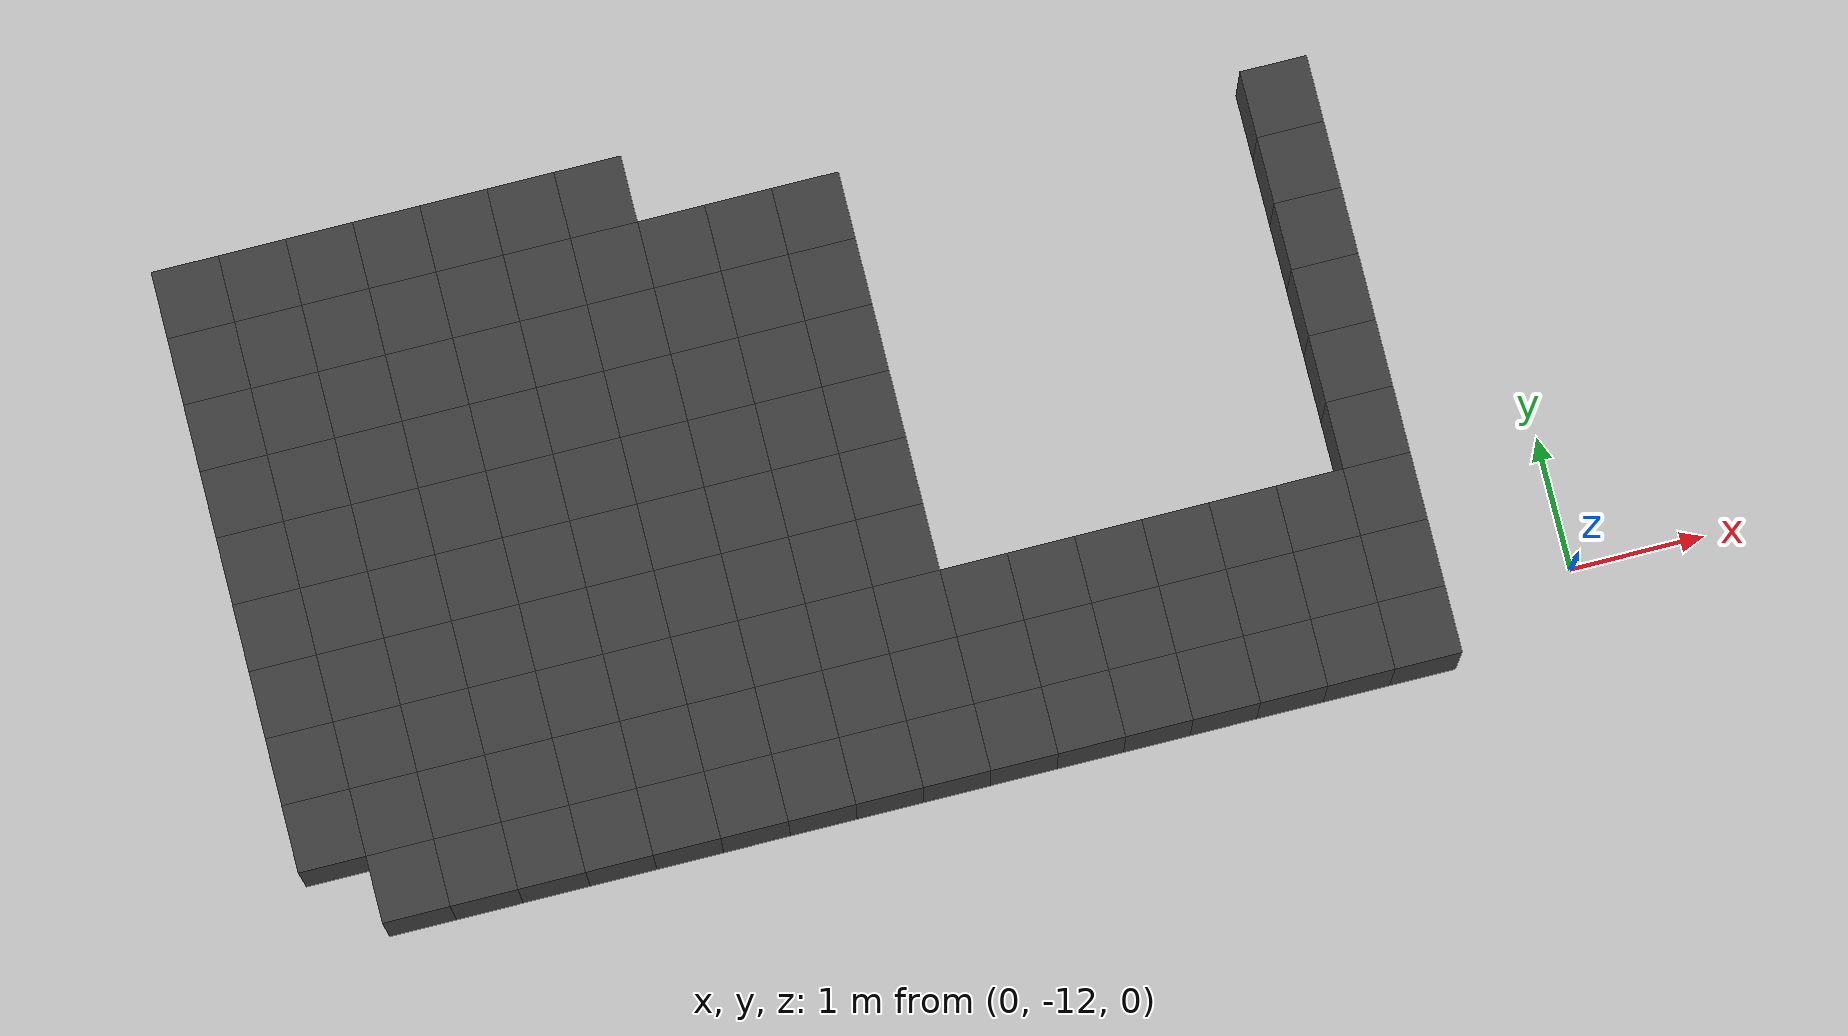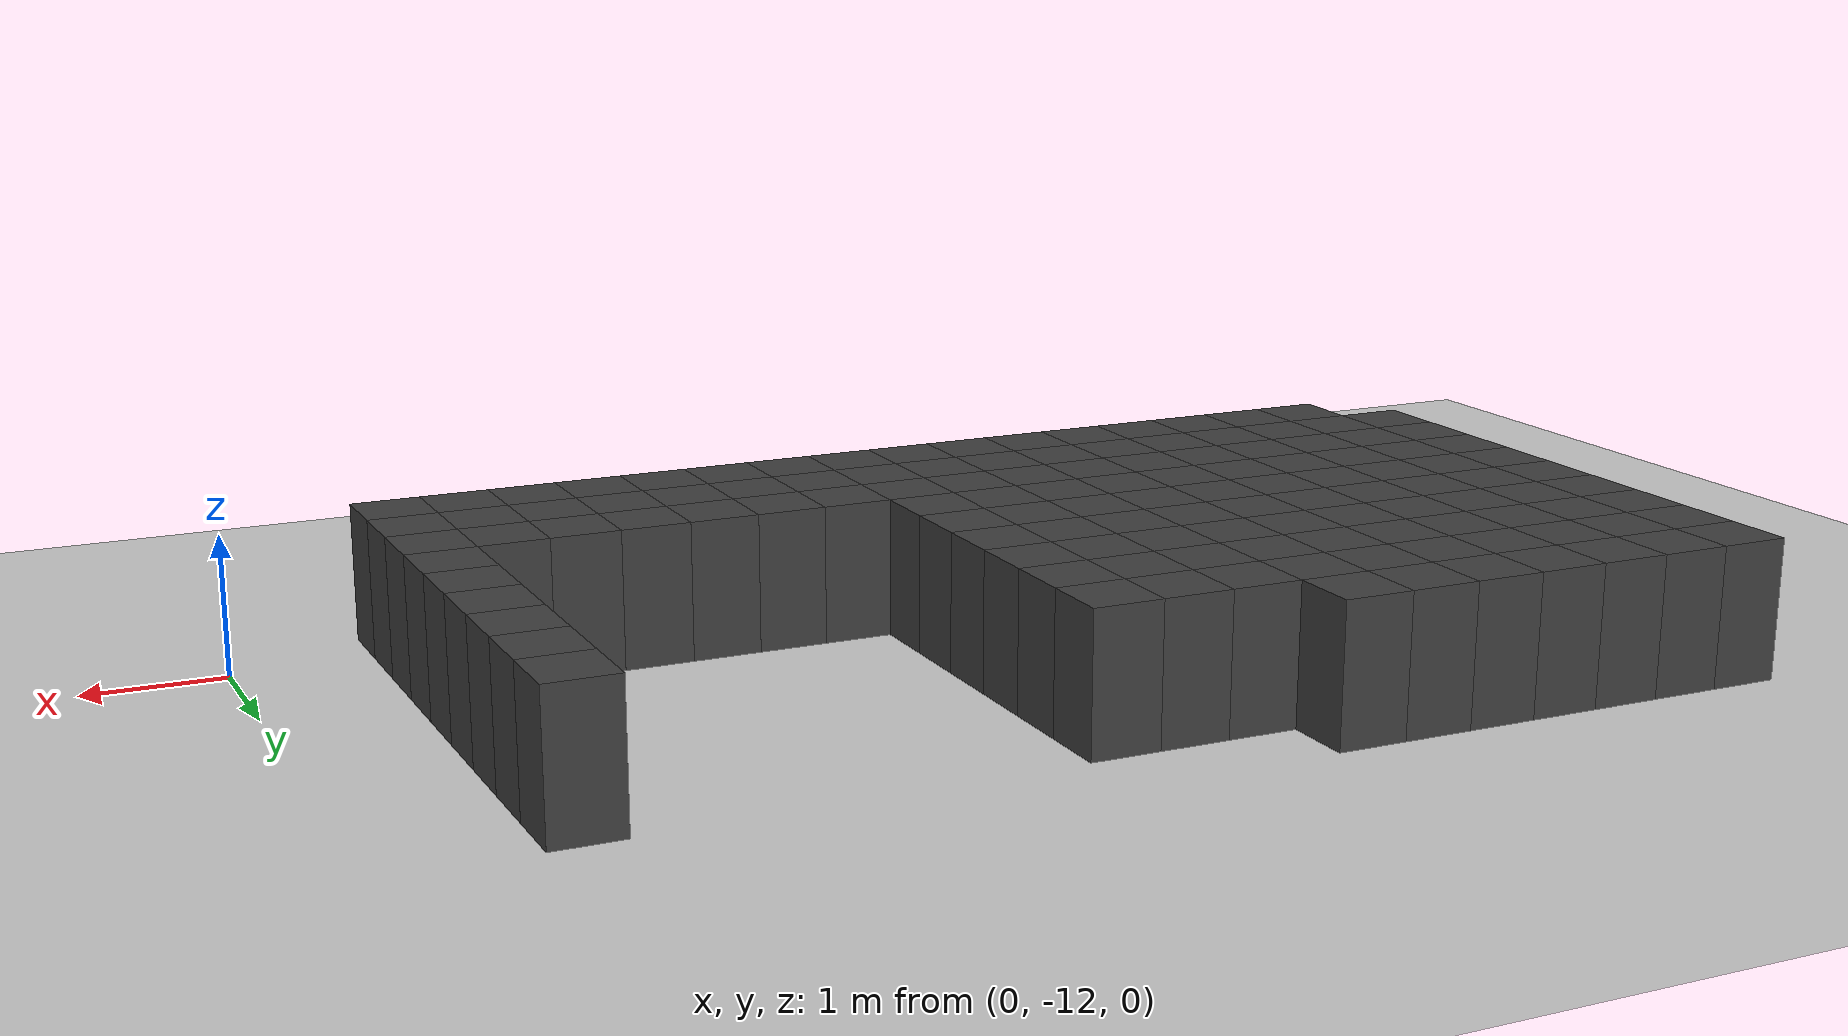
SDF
<sdf version="1.7">
 <world name="map_13364">
  <model name="ground_plane">
   <static>true</static>
   <link name="link">
    <collision name="collision">
     <geometry><plane><normal>0 0 1</normal><size>200 200</size></plane></geometry>
    </collision>
    <visual name="visual">
     <geometry><plane><normal>0 0 1</normal><size>200 200</size></plane></geometry>
     <material><ambient>0.8 0.8 0.8 1</ambient><diffuse>0.8 0.8 0.8 1</diffuse></material>
    </visual>
   </link>
  </model>
  <model name="maze_environment">
   <static>true</static>
   <link name="wall_1448">
    <pose>-9.250 -7.750 0.500 0 0 0</pose>
    <collision name="col"><geometry><box><size>0.5 0.5 1.0</size></box></geometry></collision>
    <visual name="vis">
     <geometry><box><size>0.5 0.5 1.0</size></box></geometry>
     <material><ambient>0.15 0.15 0.15 1</ambient><diffuse>0.25 0.25 0.25 1</diffuse></material>
    </visual>
   </link>
   <link name="wall_1449">
    <pose>-8.750 -7.750 0.500 0 0 0</pose>
    <collision name="col"><geometry><box><size>0.5 0.5 1.0</size></box></geometry></collision>
    <visual name="vis">
     <geometry><box><size>0.5 0.5 1.0</size></box></geometry>
     <material><ambient>0.15 0.15 0.15 1</ambient><diffuse>0.25 0.25 0.25 1</diffuse></material>
    </visual>
   </link>
   <link name="wall_1450">
    <pose>-8.250 -7.750 0.500 0 0 0</pose>
    <collision name="col"><geometry><box><size>0.5 0.5 1.0</size></box></geometry></collision>
    <visual name="vis">
     <geometry><box><size>0.5 0.5 1.0</size></box></geometry>
     <material><ambient>0.15 0.15 0.15 1</ambient><diffuse>0.25 0.25 0.25 1</diffuse></material>
    </visual>
   </link>
   <link name="wall_1451">
    <pose>-7.750 -7.750 0.500 0 0 0</pose>
    <collision name="col"><geometry><box><size>0.5 0.5 1.0</size></box></geometry></collision>
    <visual name="vis">
     <geometry><box><size>0.5 0.5 1.0</size></box></geometry>
     <material><ambient>0.15 0.15 0.15 1</ambient><diffuse>0.25 0.25 0.25 1</diffuse></material>
    </visual>
   </link>
   <link name="wall_1452">
    <pose>-7.250 -7.750 0.500 0 0 0</pose>
    <collision name="col"><geometry><box><size>0.5 0.5 1.0</size></box></geometry></collision>
    <visual name="vis">
     <geometry><box><size>0.5 0.5 1.0</size></box></geometry>
     <material><ambient>0.15 0.15 0.15 1</ambient><diffuse>0.25 0.25 0.25 1</diffuse></material>
    </visual>
   </link>
   <link name="wall_1453">
    <pose>-6.750 -7.750 0.500 0 0 0</pose>
    <collision name="col"><geometry><box><size>0.5 0.5 1.0</size></box></geometry></collision>
    <visual name="vis">
     <geometry><box><size>0.5 0.5 1.0</size></box></geometry>
     <material><ambient>0.15 0.15 0.15 1</ambient><diffuse>0.25 0.25 0.25 1</diffuse></material>
    </visual>
   </link>
   <link name="wall_1454">
    <pose>-6.250 -7.750 0.500 0 0 0</pose>
    <collision name="col"><geometry><box><size>0.5 0.5 1.0</size></box></geometry></collision>
    <visual name="vis">
     <geometry><box><size>0.5 0.5 1.0</size></box></geometry>
     <material><ambient>0.15 0.15 0.15 1</ambient><diffuse>0.25 0.25 0.25 1</diffuse></material>
    </visual>
   </link>
   <link name="wall_1485">
    <pose>-9.250 -8.250 0.500 0 0 0</pose>
    <collision name="col"><geometry><box><size>0.5 0.5 1.0</size></box></geometry></collision>
    <visual name="vis">
     <geometry><box><size>0.5 0.5 1.0</size></box></geometry>
     <material><ambient>0.15 0.15 0.15 1</ambient><diffuse>0.25 0.25 0.25 1</diffuse></material>
    </visual>
   </link>
   <link name="wall_1486">
    <pose>-8.750 -8.250 0.500 0 0 0</pose>
    <collision name="col"><geometry><box><size>0.5 0.5 1.0</size></box></geometry></collision>
    <visual name="vis">
     <geometry><box><size>0.5 0.5 1.0</size></box></geometry>
     <material><ambient>0.15 0.15 0.15 1</ambient><diffuse>0.25 0.25 0.25 1</diffuse></material>
    </visual>
   </link>
   <link name="wall_1487">
    <pose>-8.250 -8.250 0.500 0 0 0</pose>
    <collision name="col"><geometry><box><size>0.5 0.5 1.0</size></box></geometry></collision>
    <visual name="vis">
     <geometry><box><size>0.5 0.5 1.0</size></box></geometry>
     <material><ambient>0.15 0.15 0.15 1</ambient><diffuse>0.25 0.25 0.25 1</diffuse></material>
    </visual>
   </link>
   <link name="wall_1488">
    <pose>-7.750 -8.250 0.500 0 0 0</pose>
    <collision name="col"><geometry><box><size>0.5 0.5 1.0</size></box></geometry></collision>
    <visual name="vis">
     <geometry><box><size>0.5 0.5 1.0</size></box></geometry>
     <material><ambient>0.15 0.15 0.15 1</ambient><diffuse>0.25 0.25 0.25 1</diffuse></material>
    </visual>
   </link>
   <link name="wall_1489">
    <pose>-7.250 -8.250 0.500 0 0 0</pose>
    <collision name="col"><geometry><box><size>0.5 0.5 1.0</size></box></geometry></collision>
    <visual name="vis">
     <geometry><box><size>0.5 0.5 1.0</size></box></geometry>
     <material><ambient>0.15 0.15 0.15 1</ambient><diffuse>0.25 0.25 0.25 1</diffuse></material>
    </visual>
   </link>
   <link name="wall_1490">
    <pose>-6.750 -8.250 0.500 0 0 0</pose>
    <collision name="col"><geometry><box><size>0.5 0.5 1.0</size></box></geometry></collision>
    <visual name="vis">
     <geometry><box><size>0.5 0.5 1.0</size></box></geometry>
     <material><ambient>0.15 0.15 0.15 1</ambient><diffuse>0.25 0.25 0.25 1</diffuse></material>
    </visual>
   </link>
   <link name="wall_1491">
    <pose>-6.250 -8.250 0.500 0 0 0</pose>
    <collision name="col"><geometry><box><size>0.5 0.5 1.0</size></box></geometry></collision>
    <visual name="vis">
     <geometry><box><size>0.5 0.5 1.0</size></box></geometry>
     <material><ambient>0.15 0.15 0.15 1</ambient><diffuse>0.25 0.25 0.25 1</diffuse></material>
    </visual>
   </link>
   <link name="wall_1492">
    <pose>-5.750 -8.250 0.500 0 0 0</pose>
    <collision name="col"><geometry><box><size>0.5 0.5 1.0</size></box></geometry></collision>
    <visual name="vis">
     <geometry><box><size>0.5 0.5 1.0</size></box></geometry>
     <material><ambient>0.15 0.15 0.15 1</ambient><diffuse>0.25 0.25 0.25 1</diffuse></material>
    </visual>
   </link>
   <link name="wall_1493">
    <pose>-5.250 -8.250 0.500 0 0 0</pose>
    <collision name="col"><geometry><box><size>0.5 0.5 1.0</size></box></geometry></collision>
    <visual name="vis">
     <geometry><box><size>0.5 0.5 1.0</size></box></geometry>
     <material><ambient>0.15 0.15 0.15 1</ambient><diffuse>0.25 0.25 0.25 1</diffuse></material>
    </visual>
   </link>
   <link name="wall_1494">
    <pose>-4.750 -8.250 0.500 0 0 0</pose>
    <collision name="col"><geometry><box><size>0.5 0.5 1.0</size></box></geometry></collision>
    <visual name="vis">
     <geometry><box><size>0.5 0.5 1.0</size></box></geometry>
     <material><ambient>0.15 0.15 0.15 1</ambient><diffuse>0.25 0.25 0.25 1</diffuse></material>
    </visual>
   </link>
   <link name="wall_1495">
    <pose>-1.250 -8.250 0.500 0 0 0</pose>
    <collision name="col"><geometry><box><size>0.5 0.5 1.0</size></box></geometry></collision>
    <visual name="vis">
     <geometry><box><size>0.5 0.5 1.0</size></box></geometry>
     <material><ambient>0.15 0.15 0.15 1</ambient><diffuse>0.25 0.25 0.25 1</diffuse></material>
    </visual>
   </link>
   <link name="wall_1522">
    <pose>-9.250 -8.750 0.500 0 0 0</pose>
    <collision name="col"><geometry><box><size>0.5 0.5 1.0</size></box></geometry></collision>
    <visual name="vis">
     <geometry><box><size>0.5 0.5 1.0</size></box></geometry>
     <material><ambient>0.15 0.15 0.15 1</ambient><diffuse>0.25 0.25 0.25 1</diffuse></material>
    </visual>
   </link>
   <link name="wall_1523">
    <pose>-8.750 -8.750 0.500 0 0 0</pose>
    <collision name="col"><geometry><box><size>0.5 0.5 1.0</size></box></geometry></collision>
    <visual name="vis">
     <geometry><box><size>0.5 0.5 1.0</size></box></geometry>
     <material><ambient>0.15 0.15 0.15 1</ambient><diffuse>0.25 0.25 0.25 1</diffuse></material>
    </visual>
   </link>
   <link name="wall_1524">
    <pose>-8.250 -8.750 0.500 0 0 0</pose>
    <collision name="col"><geometry><box><size>0.5 0.5 1.0</size></box></geometry></collision>
    <visual name="vis">
     <geometry><box><size>0.5 0.5 1.0</size></box></geometry>
     <material><ambient>0.15 0.15 0.15 1</ambient><diffuse>0.25 0.25 0.25 1</diffuse></material>
    </visual>
   </link>
   <link name="wall_1525">
    <pose>-7.750 -8.750 0.500 0 0 0</pose>
    <collision name="col"><geometry><box><size>0.5 0.5 1.0</size></box></geometry></collision>
    <visual name="vis">
     <geometry><box><size>0.5 0.5 1.0</size></box></geometry>
     <material><ambient>0.15 0.15 0.15 1</ambient><diffuse>0.25 0.25 0.25 1</diffuse></material>
    </visual>
   </link>
   <link name="wall_1526">
    <pose>-7.250 -8.750 0.500 0 0 0</pose>
    <collision name="col"><geometry><box><size>0.5 0.5 1.0</size></box></geometry></collision>
    <visual name="vis">
     <geometry><box><size>0.5 0.5 1.0</size></box></geometry>
     <material><ambient>0.15 0.15 0.15 1</ambient><diffuse>0.25 0.25 0.25 1</diffuse></material>
    </visual>
   </link>
   <link name="wall_1527">
    <pose>-6.750 -8.750 0.500 0 0 0</pose>
    <collision name="col"><geometry><box><size>0.5 0.5 1.0</size></box></geometry></collision>
    <visual name="vis">
     <geometry><box><size>0.5 0.5 1.0</size></box></geometry>
     <material><ambient>0.15 0.15 0.15 1</ambient><diffuse>0.25 0.25 0.25 1</diffuse></material>
    </visual>
   </link>
   <link name="wall_1528">
    <pose>-6.250 -8.750 0.500 0 0 0</pose>
    <collision name="col"><geometry><box><size>0.5 0.5 1.0</size></box></geometry></collision>
    <visual name="vis">
     <geometry><box><size>0.5 0.5 1.0</size></box></geometry>
     <material><ambient>0.15 0.15 0.15 1</ambient><diffuse>0.25 0.25 0.25 1</diffuse></material>
    </visual>
   </link>
   <link name="wall_1529">
    <pose>-5.750 -8.750 0.500 0 0 0</pose>
    <collision name="col"><geometry><box><size>0.5 0.5 1.0</size></box></geometry></collision>
    <visual name="vis">
     <geometry><box><size>0.5 0.5 1.0</size></box></geometry>
     <material><ambient>0.15 0.15 0.15 1</ambient><diffuse>0.25 0.25 0.25 1</diffuse></material>
    </visual>
   </link>
   <link name="wall_1530">
    <pose>-5.250 -8.750 0.500 0 0 0</pose>
    <collision name="col"><geometry><box><size>0.5 0.5 1.0</size></box></geometry></collision>
    <visual name="vis">
     <geometry><box><size>0.5 0.5 1.0</size></box></geometry>
     <material><ambient>0.15 0.15 0.15 1</ambient><diffuse>0.25 0.25 0.25 1</diffuse></material>
    </visual>
   </link>
   <link name="wall_1531">
    <pose>-4.750 -8.750 0.500 0 0 0</pose>
    <collision name="col"><geometry><box><size>0.5 0.5 1.0</size></box></geometry></collision>
    <visual name="vis">
     <geometry><box><size>0.5 0.5 1.0</size></box></geometry>
     <material><ambient>0.15 0.15 0.15 1</ambient><diffuse>0.25 0.25 0.25 1</diffuse></material>
    </visual>
   </link>
   <link name="wall_1532">
    <pose>-1.250 -8.750 0.500 0 0 0</pose>
    <collision name="col"><geometry><box><size>0.5 0.5 1.0</size></box></geometry></collision>
    <visual name="vis">
     <geometry><box><size>0.5 0.5 1.0</size></box></geometry>
     <material><ambient>0.15 0.15 0.15 1</ambient><diffuse>0.25 0.25 0.25 1</diffuse></material>
    </visual>
   </link>
   <link name="wall_1559">
    <pose>-9.250 -9.250 0.500 0 0 0</pose>
    <collision name="col"><geometry><box><size>0.5 0.5 1.0</size></box></geometry></collision>
    <visual name="vis">
     <geometry><box><size>0.5 0.5 1.0</size></box></geometry>
     <material><ambient>0.15 0.15 0.15 1</ambient><diffuse>0.25 0.25 0.25 1</diffuse></material>
    </visual>
   </link>
   <link name="wall_1560">
    <pose>-8.750 -9.250 0.500 0 0 0</pose>
    <collision name="col"><geometry><box><size>0.5 0.5 1.0</size></box></geometry></collision>
    <visual name="vis">
     <geometry><box><size>0.5 0.5 1.0</size></box></geometry>
     <material><ambient>0.15 0.15 0.15 1</ambient><diffuse>0.25 0.25 0.25 1</diffuse></material>
    </visual>
   </link>
   <link name="wall_1561">
    <pose>-8.250 -9.250 0.500 0 0 0</pose>
    <collision name="col"><geometry><box><size>0.5 0.5 1.0</size></box></geometry></collision>
    <visual name="vis">
     <geometry><box><size>0.5 0.5 1.0</size></box></geometry>
     <material><ambient>0.15 0.15 0.15 1</ambient><diffuse>0.25 0.25 0.25 1</diffuse></material>
    </visual>
   </link>
   <link name="wall_1562">
    <pose>-7.750 -9.250 0.500 0 0 0</pose>
    <collision name="col"><geometry><box><size>0.5 0.5 1.0</size></box></geometry></collision>
    <visual name="vis">
     <geometry><box><size>0.5 0.5 1.0</size></box></geometry>
     <material><ambient>0.15 0.15 0.15 1</ambient><diffuse>0.25 0.25 0.25 1</diffuse></material>
    </visual>
   </link>
   <link name="wall_1563">
    <pose>-7.250 -9.250 0.500 0 0 0</pose>
    <collision name="col"><geometry><box><size>0.5 0.5 1.0</size></box></geometry></collision>
    <visual name="vis">
     <geometry><box><size>0.5 0.5 1.0</size></box></geometry>
     <material><ambient>0.15 0.15 0.15 1</ambient><diffuse>0.25 0.25 0.25 1</diffuse></material>
    </visual>
   </link>
   <link name="wall_1564">
    <pose>-6.750 -9.250 0.500 0 0 0</pose>
    <collision name="col"><geometry><box><size>0.5 0.5 1.0</size></box></geometry></collision>
    <visual name="vis">
     <geometry><box><size>0.5 0.5 1.0</size></box></geometry>
     <material><ambient>0.15 0.15 0.15 1</ambient><diffuse>0.25 0.25 0.25 1</diffuse></material>
    </visual>
   </link>
   <link name="wall_1565">
    <pose>-6.250 -9.250 0.500 0 0 0</pose>
    <collision name="col"><geometry><box><size>0.5 0.5 1.0</size></box></geometry></collision>
    <visual name="vis">
     <geometry><box><size>0.5 0.5 1.0</size></box></geometry>
     <material><ambient>0.15 0.15 0.15 1</ambient><diffuse>0.25 0.25 0.25 1</diffuse></material>
    </visual>
   </link>
   <link name="wall_1566">
    <pose>-5.750 -9.250 0.500 0 0 0</pose>
    <collision name="col"><geometry><box><size>0.5 0.5 1.0</size></box></geometry></collision>
    <visual name="vis">
     <geometry><box><size>0.5 0.5 1.0</size></box></geometry>
     <material><ambient>0.15 0.15 0.15 1</ambient><diffuse>0.25 0.25 0.25 1</diffuse></material>
    </visual>
   </link>
   <link name="wall_1567">
    <pose>-5.250 -9.250 0.500 0 0 0</pose>
    <collision name="col"><geometry><box><size>0.5 0.5 1.0</size></box></geometry></collision>
    <visual name="vis">
     <geometry><box><size>0.5 0.5 1.0</size></box></geometry>
     <material><ambient>0.15 0.15 0.15 1</ambient><diffuse>0.25 0.25 0.25 1</diffuse></material>
    </visual>
   </link>
   <link name="wall_1568">
    <pose>-4.750 -9.250 0.500 0 0 0</pose>
    <collision name="col"><geometry><box><size>0.5 0.5 1.0</size></box></geometry></collision>
    <visual name="vis">
     <geometry><box><size>0.5 0.5 1.0</size></box></geometry>
     <material><ambient>0.15 0.15 0.15 1</ambient><diffuse>0.25 0.25 0.25 1</diffuse></material>
    </visual>
   </link>
   <link name="wall_1569">
    <pose>-1.250 -9.250 0.500 0 0 0</pose>
    <collision name="col"><geometry><box><size>0.5 0.5 1.0</size></box></geometry></collision>
    <visual name="vis">
     <geometry><box><size>0.5 0.5 1.0</size></box></geometry>
     <material><ambient>0.15 0.15 0.15 1</ambient><diffuse>0.25 0.25 0.25 1</diffuse></material>
    </visual>
   </link>
   <link name="wall_1602">
    <pose>-9.250 -9.750 0.500 0 0 0</pose>
    <collision name="col"><geometry><box><size>0.5 0.5 1.0</size></box></geometry></collision>
    <visual name="vis">
     <geometry><box><size>0.5 0.5 1.0</size></box></geometry>
     <material><ambient>0.15 0.15 0.15 1</ambient><diffuse>0.25 0.25 0.25 1</diffuse></material>
    </visual>
   </link>
   <link name="wall_1603">
    <pose>-8.750 -9.750 0.500 0 0 0</pose>
    <collision name="col"><geometry><box><size>0.5 0.5 1.0</size></box></geometry></collision>
    <visual name="vis">
     <geometry><box><size>0.5 0.5 1.0</size></box></geometry>
     <material><ambient>0.15 0.15 0.15 1</ambient><diffuse>0.25 0.25 0.25 1</diffuse></material>
    </visual>
   </link>
   <link name="wall_1604">
    <pose>-8.250 -9.750 0.500 0 0 0</pose>
    <collision name="col"><geometry><box><size>0.5 0.5 1.0</size></box></geometry></collision>
    <visual name="vis">
     <geometry><box><size>0.5 0.5 1.0</size></box></geometry>
     <material><ambient>0.15 0.15 0.15 1</ambient><diffuse>0.25 0.25 0.25 1</diffuse></material>
    </visual>
   </link>
   <link name="wall_1605">
    <pose>-7.750 -9.750 0.500 0 0 0</pose>
    <collision name="col"><geometry><box><size>0.5 0.5 1.0</size></box></geometry></collision>
    <visual name="vis">
     <geometry><box><size>0.5 0.5 1.0</size></box></geometry>
     <material><ambient>0.15 0.15 0.15 1</ambient><diffuse>0.25 0.25 0.25 1</diffuse></material>
    </visual>
   </link>
   <link name="wall_1606">
    <pose>-7.250 -9.750 0.500 0 0 0</pose>
    <collision name="col"><geometry><box><size>0.5 0.5 1.0</size></box></geometry></collision>
    <visual name="vis">
     <geometry><box><size>0.5 0.5 1.0</size></box></geometry>
     <material><ambient>0.15 0.15 0.15 1</ambient><diffuse>0.25 0.25 0.25 1</diffuse></material>
    </visual>
   </link>
   <link name="wall_1607">
    <pose>-6.750 -9.750 0.500 0 0 0</pose>
    <collision name="col"><geometry><box><size>0.5 0.5 1.0</size></box></geometry></collision>
    <visual name="vis">
     <geometry><box><size>0.5 0.5 1.0</size></box></geometry>
     <material><ambient>0.15 0.15 0.15 1</ambient><diffuse>0.25 0.25 0.25 1</diffuse></material>
    </visual>
   </link>
   <link name="wall_1608">
    <pose>-6.250 -9.750 0.500 0 0 0</pose>
    <collision name="col"><geometry><box><size>0.5 0.5 1.0</size></box></geometry></collision>
    <visual name="vis">
     <geometry><box><size>0.5 0.5 1.0</size></box></geometry>
     <material><ambient>0.15 0.15 0.15 1</ambient><diffuse>0.25 0.25 0.25 1</diffuse></material>
    </visual>
   </link>
   <link name="wall_1609">
    <pose>-5.750 -9.750 0.500 0 0 0</pose>
    <collision name="col"><geometry><box><size>0.5 0.5 1.0</size></box></geometry></collision>
    <visual name="vis">
     <geometry><box><size>0.5 0.5 1.0</size></box></geometry>
     <material><ambient>0.15 0.15 0.15 1</ambient><diffuse>0.25 0.25 0.25 1</diffuse></material>
    </visual>
   </link>
   <link name="wall_1610">
    <pose>-5.250 -9.750 0.500 0 0 0</pose>
    <collision name="col"><geometry><box><size>0.5 0.5 1.0</size></box></geometry></collision>
    <visual name="vis">
     <geometry><box><size>0.5 0.5 1.0</size></box></geometry>
     <material><ambient>0.15 0.15 0.15 1</ambient><diffuse>0.25 0.25 0.25 1</diffuse></material>
    </visual>
   </link>
   <link name="wall_1611">
    <pose>-4.750 -9.750 0.500 0 0 0</pose>
    <collision name="col"><geometry><box><size>0.5 0.5 1.0</size></box></geometry></collision>
    <visual name="vis">
     <geometry><box><size>0.5 0.5 1.0</size></box></geometry>
     <material><ambient>0.15 0.15 0.15 1</ambient><diffuse>0.25 0.25 0.25 1</diffuse></material>
    </visual>
   </link>
   <link name="wall_1612">
    <pose>-1.250 -9.750 0.500 0 0 0</pose>
    <collision name="col"><geometry><box><size>0.5 0.5 1.0</size></box></geometry></collision>
    <visual name="vis">
     <geometry><box><size>0.5 0.5 1.0</size></box></geometry>
     <material><ambient>0.15 0.15 0.15 1</ambient><diffuse>0.25 0.25 0.25 1</diffuse></material>
    </visual>
   </link>
   <link name="wall_1645">
    <pose>-9.250 -10.250 0.500 0 0 0</pose>
    <collision name="col"><geometry><box><size>0.5 0.5 1.0</size></box></geometry></collision>
    <visual name="vis">
     <geometry><box><size>0.5 0.5 1.0</size></box></geometry>
     <material><ambient>0.15 0.15 0.15 1</ambient><diffuse>0.25 0.25 0.25 1</diffuse></material>
    </visual>
   </link>
   <link name="wall_1646">
    <pose>-8.750 -10.250 0.500 0 0 0</pose>
    <collision name="col"><geometry><box><size>0.5 0.5 1.0</size></box></geometry></collision>
    <visual name="vis">
     <geometry><box><size>0.5 0.5 1.0</size></box></geometry>
     <material><ambient>0.15 0.15 0.15 1</ambient><diffuse>0.25 0.25 0.25 1</diffuse></material>
    </visual>
   </link>
   <link name="wall_1647">
    <pose>-8.250 -10.250 0.500 0 0 0</pose>
    <collision name="col"><geometry><box><size>0.5 0.5 1.0</size></box></geometry></collision>
    <visual name="vis">
     <geometry><box><size>0.5 0.5 1.0</size></box></geometry>
     <material><ambient>0.15 0.15 0.15 1</ambient><diffuse>0.25 0.25 0.25 1</diffuse></material>
    </visual>
   </link>
   <link name="wall_1648">
    <pose>-7.750 -10.250 0.500 0 0 0</pose>
    <collision name="col"><geometry><box><size>0.5 0.5 1.0</size></box></geometry></collision>
    <visual name="vis">
     <geometry><box><size>0.5 0.5 1.0</size></box></geometry>
     <material><ambient>0.15 0.15 0.15 1</ambient><diffuse>0.25 0.25 0.25 1</diffuse></material>
    </visual>
   </link>
   <link name="wall_1649">
    <pose>-7.250 -10.250 0.500 0 0 0</pose>
    <collision name="col"><geometry><box><size>0.5 0.5 1.0</size></box></geometry></collision>
    <visual name="vis">
     <geometry><box><size>0.5 0.5 1.0</size></box></geometry>
     <material><ambient>0.15 0.15 0.15 1</ambient><diffuse>0.25 0.25 0.25 1</diffuse></material>
    </visual>
   </link>
   <link name="wall_1650">
    <pose>-6.750 -10.250 0.500 0 0 0</pose>
    <collision name="col"><geometry><box><size>0.5 0.5 1.0</size></box></geometry></collision>
    <visual name="vis">
     <geometry><box><size>0.5 0.5 1.0</size></box></geometry>
     <material><ambient>0.15 0.15 0.15 1</ambient><diffuse>0.25 0.25 0.25 1</diffuse></material>
    </visual>
   </link>
   <link name="wall_1651">
    <pose>-6.250 -10.250 0.500 0 0 0</pose>
    <collision name="col"><geometry><box><size>0.5 0.5 1.0</size></box></geometry></collision>
    <visual name="vis">
     <geometry><box><size>0.5 0.5 1.0</size></box></geometry>
     <material><ambient>0.15 0.15 0.15 1</ambient><diffuse>0.25 0.25 0.25 1</diffuse></material>
    </visual>
   </link>
   <link name="wall_1652">
    <pose>-5.750 -10.250 0.500 0 0 0</pose>
    <collision name="col"><geometry><box><size>0.5 0.5 1.0</size></box></geometry></collision>
    <visual name="vis">
     <geometry><box><size>0.5 0.5 1.0</size></box></geometry>
     <material><ambient>0.15 0.15 0.15 1</ambient><diffuse>0.25 0.25 0.25 1</diffuse></material>
    </visual>
   </link>
   <link name="wall_1653">
    <pose>-5.250 -10.250 0.500 0 0 0</pose>
    <collision name="col"><geometry><box><size>0.5 0.5 1.0</size></box></geometry></collision>
    <visual name="vis">
     <geometry><box><size>0.5 0.5 1.0</size></box></geometry>
     <material><ambient>0.15 0.15 0.15 1</ambient><diffuse>0.25 0.25 0.25 1</diffuse></material>
    </visual>
   </link>
   <link name="wall_1654">
    <pose>-4.750 -10.250 0.500 0 0 0</pose>
    <collision name="col"><geometry><box><size>0.5 0.5 1.0</size></box></geometry></collision>
    <visual name="vis">
     <geometry><box><size>0.5 0.5 1.0</size></box></geometry>
     <material><ambient>0.15 0.15 0.15 1</ambient><diffuse>0.25 0.25 0.25 1</diffuse></material>
    </visual>
   </link>
   <link name="wall_1655">
    <pose>-1.250 -10.250 0.500 0 0 0</pose>
    <collision name="col"><geometry><box><size>0.5 0.5 1.0</size></box></geometry></collision>
    <visual name="vis">
     <geometry><box><size>0.5 0.5 1.0</size></box></geometry>
     <material><ambient>0.15 0.15 0.15 1</ambient><diffuse>0.25 0.25 0.25 1</diffuse></material>
    </visual>
   </link>
   <link name="wall_1688">
    <pose>-9.250 -10.750 0.500 0 0 0</pose>
    <collision name="col"><geometry><box><size>0.5 0.5 1.0</size></box></geometry></collision>
    <visual name="vis">
     <geometry><box><size>0.5 0.5 1.0</size></box></geometry>
     <material><ambient>0.15 0.15 0.15 1</ambient><diffuse>0.25 0.25 0.25 1</diffuse></material>
    </visual>
   </link>
   <link name="wall_1689">
    <pose>-8.750 -10.750 0.500 0 0 0</pose>
    <collision name="col"><geometry><box><size>0.5 0.5 1.0</size></box></geometry></collision>
    <visual name="vis">
     <geometry><box><size>0.5 0.5 1.0</size></box></geometry>
     <material><ambient>0.15 0.15 0.15 1</ambient><diffuse>0.25 0.25 0.25 1</diffuse></material>
    </visual>
   </link>
   <link name="wall_1690">
    <pose>-8.250 -10.750 0.500 0 0 0</pose>
    <collision name="col"><geometry><box><size>0.5 0.5 1.0</size></box></geometry></collision>
    <visual name="vis">
     <geometry><box><size>0.5 0.5 1.0</size></box></geometry>
     <material><ambient>0.15 0.15 0.15 1</ambient><diffuse>0.25 0.25 0.25 1</diffuse></material>
    </visual>
   </link>
   <link name="wall_1691">
    <pose>-7.750 -10.750 0.500 0 0 0</pose>
    <collision name="col"><geometry><box><size>0.5 0.5 1.0</size></box></geometry></collision>
    <visual name="vis">
     <geometry><box><size>0.5 0.5 1.0</size></box></geometry>
     <material><ambient>0.15 0.15 0.15 1</ambient><diffuse>0.25 0.25 0.25 1</diffuse></material>
    </visual>
   </link>
   <link name="wall_1692">
    <pose>-7.250 -10.750 0.500 0 0 0</pose>
    <collision name="col"><geometry><box><size>0.5 0.5 1.0</size></box></geometry></collision>
    <visual name="vis">
     <geometry><box><size>0.5 0.5 1.0</size></box></geometry>
     <material><ambient>0.15 0.15 0.15 1</ambient><diffuse>0.25 0.25 0.25 1</diffuse></material>
    </visual>
   </link>
   <link name="wall_1693">
    <pose>-6.750 -10.750 0.500 0 0 0</pose>
    <collision name="col"><geometry><box><size>0.5 0.5 1.0</size></box></geometry></collision>
    <visual name="vis">
     <geometry><box><size>0.5 0.5 1.0</size></box></geometry>
     <material><ambient>0.15 0.15 0.15 1</ambient><diffuse>0.25 0.25 0.25 1</diffuse></material>
    </visual>
   </link>
   <link name="wall_1694">
    <pose>-6.250 -10.750 0.500 0 0 0</pose>
    <collision name="col"><geometry><box><size>0.5 0.5 1.0</size></box></geometry></collision>
    <visual name="vis">
     <geometry><box><size>0.5 0.5 1.0</size></box></geometry>
     <material><ambient>0.15 0.15 0.15 1</ambient><diffuse>0.25 0.25 0.25 1</diffuse></material>
    </visual>
   </link>
   <link name="wall_1695">
    <pose>-5.750 -10.750 0.500 0 0 0</pose>
    <collision name="col"><geometry><box><size>0.5 0.5 1.0</size></box></geometry></collision>
    <visual name="vis">
     <geometry><box><size>0.5 0.5 1.0</size></box></geometry>
     <material><ambient>0.15 0.15 0.15 1</ambient><diffuse>0.25 0.25 0.25 1</diffuse></material>
    </visual>
   </link>
   <link name="wall_1696">
    <pose>-5.250 -10.750 0.500 0 0 0</pose>
    <collision name="col"><geometry><box><size>0.5 0.5 1.0</size></box></geometry></collision>
    <visual name="vis">
     <geometry><box><size>0.5 0.5 1.0</size></box></geometry>
     <material><ambient>0.15 0.15 0.15 1</ambient><diffuse>0.25 0.25 0.25 1</diffuse></material>
    </visual>
   </link>
   <link name="wall_1697">
    <pose>-4.750 -10.750 0.500 0 0 0</pose>
    <collision name="col"><geometry><box><size>0.5 0.5 1.0</size></box></geometry></collision>
    <visual name="vis">
     <geometry><box><size>0.5 0.5 1.0</size></box></geometry>
     <material><ambient>0.15 0.15 0.15 1</ambient><diffuse>0.25 0.25 0.25 1</diffuse></material>
    </visual>
   </link>
   <link name="wall_1698">
    <pose>-1.250 -10.750 0.500 0 0 0</pose>
    <collision name="col"><geometry><box><size>0.5 0.5 1.0</size></box></geometry></collision>
    <visual name="vis">
     <geometry><box><size>0.5 0.5 1.0</size></box></geometry>
     <material><ambient>0.15 0.15 0.15 1</ambient><diffuse>0.25 0.25 0.25 1</diffuse></material>
    </visual>
   </link>
   <link name="wall_1728">
    <pose>-9.250 -11.250 0.500 0 0 0</pose>
    <collision name="col"><geometry><box><size>0.5 0.5 1.0</size></box></geometry></collision>
    <visual name="vis">
     <geometry><box><size>0.5 0.5 1.0</size></box></geometry>
     <material><ambient>0.15 0.15 0.15 1</ambient><diffuse>0.25 0.25 0.25 1</diffuse></material>
    </visual>
   </link>
   <link name="wall_1729">
    <pose>-8.750 -11.250 0.500 0 0 0</pose>
    <collision name="col"><geometry><box><size>0.5 0.5 1.0</size></box></geometry></collision>
    <visual name="vis">
     <geometry><box><size>0.5 0.5 1.0</size></box></geometry>
     <material><ambient>0.15 0.15 0.15 1</ambient><diffuse>0.25 0.25 0.25 1</diffuse></material>
    </visual>
   </link>
   <link name="wall_1730">
    <pose>-8.250 -11.250 0.500 0 0 0</pose>
    <collision name="col"><geometry><box><size>0.5 0.5 1.0</size></box></geometry></collision>
    <visual name="vis">
     <geometry><box><size>0.5 0.5 1.0</size></box></geometry>
     <material><ambient>0.15 0.15 0.15 1</ambient><diffuse>0.25 0.25 0.25 1</diffuse></material>
    </visual>
   </link>
   <link name="wall_1731">
    <pose>-7.750 -11.250 0.500 0 0 0</pose>
    <collision name="col"><geometry><box><size>0.5 0.5 1.0</size></box></geometry></collision>
    <visual name="vis">
     <geometry><box><size>0.5 0.5 1.0</size></box></geometry>
     <material><ambient>0.15 0.15 0.15 1</ambient><diffuse>0.25 0.25 0.25 1</diffuse></material>
    </visual>
   </link>
   <link name="wall_1732">
    <pose>-7.250 -11.250 0.500 0 0 0</pose>
    <collision name="col"><geometry><box><size>0.5 0.5 1.0</size></box></geometry></collision>
    <visual name="vis">
     <geometry><box><size>0.5 0.5 1.0</size></box></geometry>
     <material><ambient>0.15 0.15 0.15 1</ambient><diffuse>0.25 0.25 0.25 1</diffuse></material>
    </visual>
   </link>
   <link name="wall_1733">
    <pose>-6.750 -11.250 0.500 0 0 0</pose>
    <collision name="col"><geometry><box><size>0.5 0.5 1.0</size></box></geometry></collision>
    <visual name="vis">
     <geometry><box><size>0.5 0.5 1.0</size></box></geometry>
     <material><ambient>0.15 0.15 0.15 1</ambient><diffuse>0.25 0.25 0.25 1</diffuse></material>
    </visual>
   </link>
   <link name="wall_1734">
    <pose>-6.250 -11.250 0.500 0 0 0</pose>
    <collision name="col"><geometry><box><size>0.5 0.5 1.0</size></box></geometry></collision>
    <visual name="vis">
     <geometry><box><size>0.5 0.5 1.0</size></box></geometry>
     <material><ambient>0.15 0.15 0.15 1</ambient><diffuse>0.25 0.25 0.25 1</diffuse></material>
    </visual>
   </link>
   <link name="wall_1735">
    <pose>-5.750 -11.250 0.500 0 0 0</pose>
    <collision name="col"><geometry><box><size>0.5 0.5 1.0</size></box></geometry></collision>
    <visual name="vis">
     <geometry><box><size>0.5 0.5 1.0</size></box></geometry>
     <material><ambient>0.15 0.15 0.15 1</ambient><diffuse>0.25 0.25 0.25 1</diffuse></material>
    </visual>
   </link>
   <link name="wall_1736">
    <pose>-5.250 -11.250 0.500 0 0 0</pose>
    <collision name="col"><geometry><box><size>0.5 0.5 1.0</size></box></geometry></collision>
    <visual name="vis">
     <geometry><box><size>0.5 0.5 1.0</size></box></geometry>
     <material><ambient>0.15 0.15 0.15 1</ambient><diffuse>0.25 0.25 0.25 1</diffuse></material>
    </visual>
   </link>
   <link name="wall_1737">
    <pose>-4.750 -11.250 0.500 0 0 0</pose>
    <collision name="col"><geometry><box><size>0.5 0.5 1.0</size></box></geometry></collision>
    <visual name="vis">
     <geometry><box><size>0.5 0.5 1.0</size></box></geometry>
     <material><ambient>0.15 0.15 0.15 1</ambient><diffuse>0.25 0.25 0.25 1</diffuse></material>
    </visual>
   </link>
   <link name="wall_1738">
    <pose>-4.250 -11.250 0.500 0 0 0</pose>
    <collision name="col"><geometry><box><size>0.5 0.5 1.0</size></box></geometry></collision>
    <visual name="vis">
     <geometry><box><size>0.5 0.5 1.0</size></box></geometry>
     <material><ambient>0.15 0.15 0.15 1</ambient><diffuse>0.25 0.25 0.25 1</diffuse></material>
    </visual>
   </link>
   <link name="wall_1739">
    <pose>-3.750 -11.250 0.500 0 0 0</pose>
    <collision name="col"><geometry><box><size>0.5 0.5 1.0</size></box></geometry></collision>
    <visual name="vis">
     <geometry><box><size>0.5 0.5 1.0</size></box></geometry>
     <material><ambient>0.15 0.15 0.15 1</ambient><diffuse>0.25 0.25 0.25 1</diffuse></material>
    </visual>
   </link>
   <link name="wall_1740">
    <pose>-3.250 -11.250 0.500 0 0 0</pose>
    <collision name="col"><geometry><box><size>0.5 0.5 1.0</size></box></geometry></collision>
    <visual name="vis">
     <geometry><box><size>0.5 0.5 1.0</size></box></geometry>
     <material><ambient>0.15 0.15 0.15 1</ambient><diffuse>0.25 0.25 0.25 1</diffuse></material>
    </visual>
   </link>
   <link name="wall_1741">
    <pose>-2.750 -11.250 0.500 0 0 0</pose>
    <collision name="col"><geometry><box><size>0.5 0.5 1.0</size></box></geometry></collision>
    <visual name="vis">
     <geometry><box><size>0.5 0.5 1.0</size></box></geometry>
     <material><ambient>0.15 0.15 0.15 1</ambient><diffuse>0.25 0.25 0.25 1</diffuse></material>
    </visual>
   </link>
   <link name="wall_1742">
    <pose>-2.250 -11.250 0.500 0 0 0</pose>
    <collision name="col"><geometry><box><size>0.5 0.5 1.0</size></box></geometry></collision>
    <visual name="vis">
     <geometry><box><size>0.5 0.5 1.0</size></box></geometry>
     <material><ambient>0.15 0.15 0.15 1</ambient><diffuse>0.25 0.25 0.25 1</diffuse></material>
    </visual>
   </link>
   <link name="wall_1743">
    <pose>-1.750 -11.250 0.500 0 0 0</pose>
    <collision name="col"><geometry><box><size>0.5 0.5 1.0</size></box></geometry></collision>
    <visual name="vis">
     <geometry><box><size>0.5 0.5 1.0</size></box></geometry>
     <material><ambient>0.15 0.15 0.15 1</ambient><diffuse>0.25 0.25 0.25 1</diffuse></material>
    </visual>
   </link>
   <link name="wall_1744">
    <pose>-1.250 -11.250 0.500 0 0 0</pose>
    <collision name="col"><geometry><box><size>0.5 0.5 1.0</size></box></geometry></collision>
    <visual name="vis">
     <geometry><box><size>0.5 0.5 1.0</size></box></geometry>
     <material><ambient>0.15 0.15 0.15 1</ambient><diffuse>0.25 0.25 0.25 1</diffuse></material>
    </visual>
   </link>
   <link name="wall_1763">
    <pose>-9.250 -11.750 0.500 0 0 0</pose>
    <collision name="col"><geometry><box><size>0.5 0.5 1.0</size></box></geometry></collision>
    <visual name="vis">
     <geometry><box><size>0.5 0.5 1.0</size></box></geometry>
     <material><ambient>0.15 0.15 0.15 1</ambient><diffuse>0.25 0.25 0.25 1</diffuse></material>
    </visual>
   </link>
   <link name="wall_1764">
    <pose>-8.750 -11.750 0.500 0 0 0</pose>
    <collision name="col"><geometry><box><size>0.5 0.5 1.0</size></box></geometry></collision>
    <visual name="vis">
     <geometry><box><size>0.5 0.5 1.0</size></box></geometry>
     <material><ambient>0.15 0.15 0.15 1</ambient><diffuse>0.25 0.25 0.25 1</diffuse></material>
    </visual>
   </link>
   <link name="wall_1765">
    <pose>-8.250 -11.750 0.500 0 0 0</pose>
    <collision name="col"><geometry><box><size>0.5 0.5 1.0</size></box></geometry></collision>
    <visual name="vis">
     <geometry><box><size>0.5 0.5 1.0</size></box></geometry>
     <material><ambient>0.15 0.15 0.15 1</ambient><diffuse>0.25 0.25 0.25 1</diffuse></material>
    </visual>
   </link>
   <link name="wall_1766">
    <pose>-7.750 -11.750 0.500 0 0 0</pose>
    <collision name="col"><geometry><box><size>0.5 0.5 1.0</size></box></geometry></collision>
    <visual name="vis">
     <geometry><box><size>0.5 0.5 1.0</size></box></geometry>
     <material><ambient>0.15 0.15 0.15 1</ambient><diffuse>0.25 0.25 0.25 1</diffuse></material>
    </visual>
   </link>
   <link name="wall_1767">
    <pose>-7.250 -11.750 0.500 0 0 0</pose>
    <collision name="col"><geometry><box><size>0.5 0.5 1.0</size></box></geometry></collision>
    <visual name="vis">
     <geometry><box><size>0.5 0.5 1.0</size></box></geometry>
     <material><ambient>0.15 0.15 0.15 1</ambient><diffuse>0.25 0.25 0.25 1</diffuse></material>
    </visual>
   </link>
   <link name="wall_1768">
    <pose>-6.750 -11.750 0.500 0 0 0</pose>
    <collision name="col"><geometry><box><size>0.5 0.5 1.0</size></box></geometry></collision>
    <visual name="vis">
     <geometry><box><size>0.5 0.5 1.0</size></box></geometry>
     <material><ambient>0.15 0.15 0.15 1</ambient><diffuse>0.25 0.25 0.25 1</diffuse></material>
    </visual>
   </link>
   <link name="wall_1769">
    <pose>-6.250 -11.750 0.500 0 0 0</pose>
    <collision name="col"><geometry><box><size>0.5 0.5 1.0</size></box></geometry></collision>
    <visual name="vis">
     <geometry><box><size>0.5 0.5 1.0</size></box></geometry>
     <material><ambient>0.15 0.15 0.15 1</ambient><diffuse>0.25 0.25 0.25 1</diffuse></material>
    </visual>
   </link>
   <link name="wall_1770">
    <pose>-5.750 -11.750 0.500 0 0 0</pose>
    <collision name="col"><geometry><box><size>0.5 0.5 1.0</size></box></geometry></collision>
    <visual name="vis">
     <geometry><box><size>0.5 0.5 1.0</size></box></geometry>
     <material><ambient>0.15 0.15 0.15 1</ambient><diffuse>0.25 0.25 0.25 1</diffuse></material>
    </visual>
   </link>
   <link name="wall_1771">
    <pose>-5.250 -11.750 0.500 0 0 0</pose>
    <collision name="col"><geometry><box><size>0.5 0.5 1.0</size></box></geometry></collision>
    <visual name="vis">
     <geometry><box><size>0.5 0.5 1.0</size></box></geometry>
     <material><ambient>0.15 0.15 0.15 1</ambient><diffuse>0.25 0.25 0.25 1</diffuse></material>
    </visual>
   </link>
   <link name="wall_1772">
    <pose>-4.750 -11.750 0.500 0 0 0</pose>
    <collision name="col"><geometry><box><size>0.5 0.5 1.0</size></box></geometry></collision>
    <visual name="vis">
     <geometry><box><size>0.5 0.5 1.0</size></box></geometry>
     <material><ambient>0.15 0.15 0.15 1</ambient><diffuse>0.25 0.25 0.25 1</diffuse></material>
    </visual>
   </link>
   <link name="wall_1773">
    <pose>-4.250 -11.750 0.500 0 0 0</pose>
    <collision name="col"><geometry><box><size>0.5 0.5 1.0</size></box></geometry></collision>
    <visual name="vis">
     <geometry><box><size>0.5 0.5 1.0</size></box></geometry>
     <material><ambient>0.15 0.15 0.15 1</ambient><diffuse>0.25 0.25 0.25 1</diffuse></material>
    </visual>
   </link>
   <link name="wall_1774">
    <pose>-3.750 -11.750 0.500 0 0 0</pose>
    <collision name="col"><geometry><box><size>0.5 0.5 1.0</size></box></geometry></collision>
    <visual name="vis">
     <geometry><box><size>0.5 0.5 1.0</size></box></geometry>
     <material><ambient>0.15 0.15 0.15 1</ambient><diffuse>0.25 0.25 0.25 1</diffuse></material>
    </visual>
   </link>
   <link name="wall_1775">
    <pose>-3.250 -11.750 0.500 0 0 0</pose>
    <collision name="col"><geometry><box><size>0.5 0.5 1.0</size></box></geometry></collision>
    <visual name="vis">
     <geometry><box><size>0.5 0.5 1.0</size></box></geometry>
     <material><ambient>0.15 0.15 0.15 1</ambient><diffuse>0.25 0.25 0.25 1</diffuse></material>
    </visual>
   </link>
   <link name="wall_1776">
    <pose>-2.750 -11.750 0.500 0 0 0</pose>
    <collision name="col"><geometry><box><size>0.5 0.5 1.0</size></box></geometry></collision>
    <visual name="vis">
     <geometry><box><size>0.5 0.5 1.0</size></box></geometry>
     <material><ambient>0.15 0.15 0.15 1</ambient><diffuse>0.25 0.25 0.25 1</diffuse></material>
    </visual>
   </link>
   <link name="wall_1777">
    <pose>-2.250 -11.750 0.500 0 0 0</pose>
    <collision name="col"><geometry><box><size>0.5 0.5 1.0</size></box></geometry></collision>
    <visual name="vis">
     <geometry><box><size>0.5 0.5 1.0</size></box></geometry>
     <material><ambient>0.15 0.15 0.15 1</ambient><diffuse>0.25 0.25 0.25 1</diffuse></material>
    </visual>
   </link>
   <link name="wall_1778">
    <pose>-1.750 -11.750 0.500 0 0 0</pose>
    <collision name="col"><geometry><box><size>0.5 0.5 1.0</size></box></geometry></collision>
    <visual name="vis">
     <geometry><box><size>0.5 0.5 1.0</size></box></geometry>
     <material><ambient>0.15 0.15 0.15 1</ambient><diffuse>0.25 0.25 0.25 1</diffuse></material>
    </visual>
   </link>
   <link name="wall_1779">
    <pose>-1.250 -11.750 0.500 0 0 0</pose>
    <collision name="col"><geometry><box><size>0.5 0.5 1.0</size></box></geometry></collision>
    <visual name="vis">
     <geometry><box><size>0.5 0.5 1.0</size></box></geometry>
     <material><ambient>0.15 0.15 0.15 1</ambient><diffuse>0.25 0.25 0.25 1</diffuse></material>
    </visual>
   </link>
   <link name="wall_1811">
    <pose>-8.750 -12.250 0.500 0 0 0</pose>
    <collision name="col"><geometry><box><size>0.5 0.5 1.0</size></box></geometry></collision>
    <visual name="vis">
     <geometry><box><size>0.5 0.5 1.0</size></box></geometry>
     <material><ambient>0.15 0.15 0.15 1</ambient><diffuse>0.25 0.25 0.25 1</diffuse></material>
    </visual>
   </link>
   <link name="wall_1812">
    <pose>-8.250 -12.250 0.500 0 0 0</pose>
    <collision name="col"><geometry><box><size>0.5 0.5 1.0</size></box></geometry></collision>
    <visual name="vis">
     <geometry><box><size>0.5 0.5 1.0</size></box></geometry>
     <material><ambient>0.15 0.15 0.15 1</ambient><diffuse>0.25 0.25 0.25 1</diffuse></material>
    </visual>
   </link>
   <link name="wall_1813">
    <pose>-7.750 -12.250 0.500 0 0 0</pose>
    <collision name="col"><geometry><box><size>0.5 0.5 1.0</size></box></geometry></collision>
    <visual name="vis">
     <geometry><box><size>0.5 0.5 1.0</size></box></geometry>
     <material><ambient>0.15 0.15 0.15 1</ambient><diffuse>0.25 0.25 0.25 1</diffuse></material>
    </visual>
   </link>
   <link name="wall_1814">
    <pose>-7.250 -12.250 0.500 0 0 0</pose>
    <collision name="col"><geometry><box><size>0.5 0.5 1.0</size></box></geometry></collision>
    <visual name="vis">
     <geometry><box><size>0.5 0.5 1.0</size></box></geometry>
     <material><ambient>0.15 0.15 0.15 1</ambient><diffuse>0.25 0.25 0.25 1</diffuse></material>
    </visual>
   </link>
   <link name="wall_1815">
    <pose>-6.750 -12.250 0.500 0 0 0</pose>
    <collision name="col"><geometry><box><size>0.5 0.5 1.0</size></box></geometry></collision>
    <visual name="vis">
     <geometry><box><size>0.5 0.5 1.0</size></box></geometry>
     <material><ambient>0.15 0.15 0.15 1</ambient><diffuse>0.25 0.25 0.25 1</diffuse></material>
    </visual>
   </link>
   <link name="wall_1816">
    <pose>-6.250 -12.250 0.500 0 0 0</pose>
    <collision name="col"><geometry><box><size>0.5 0.5 1.0</size></box></geometry></collision>
    <visual name="vis">
     <geometry><box><size>0.5 0.5 1.0</size></box></geometry>
     <material><ambient>0.15 0.15 0.15 1</ambient><diffuse>0.25 0.25 0.25 1</diffuse></material>
    </visual>
   </link>
   <link name="wall_1817">
    <pose>-5.750 -12.250 0.500 0 0 0</pose>
    <collision name="col"><geometry><box><size>0.5 0.5 1.0</size></box></geometry></collision>
    <visual name="vis">
     <geometry><box><size>0.5 0.5 1.0</size></box></geometry>
     <material><ambient>0.15 0.15 0.15 1</ambient><diffuse>0.25 0.25 0.25 1</diffuse></material>
    </visual>
   </link>
   <link name="wall_1818">
    <pose>-5.250 -12.250 0.500 0 0 0</pose>
    <collision name="col"><geometry><box><size>0.5 0.5 1.0</size></box></geometry></collision>
    <visual name="vis">
     <geometry><box><size>0.5 0.5 1.0</size></box></geometry>
     <material><ambient>0.15 0.15 0.15 1</ambient><diffuse>0.25 0.25 0.25 1</diffuse></material>
    </visual>
   </link>
   <link name="wall_1819">
    <pose>-4.750 -12.250 0.500 0 0 0</pose>
    <collision name="col"><geometry><box><size>0.5 0.5 1.0</size></box></geometry></collision>
    <visual name="vis">
     <geometry><box><size>0.5 0.5 1.0</size></box></geometry>
     <material><ambient>0.15 0.15 0.15 1</ambient><diffuse>0.25 0.25 0.25 1</diffuse></material>
    </visual>
   </link>
   <link name="wall_1820">
    <pose>-4.250 -12.250 0.500 0 0 0</pose>
    <collision name="col"><geometry><box><size>0.5 0.5 1.0</size></box></geometry></collision>
    <visual name="vis">
     <geometry><box><size>0.5 0.5 1.0</size></box></geometry>
     <material><ambient>0.15 0.15 0.15 1</ambient><diffuse>0.25 0.25 0.25 1</diffuse></material>
    </visual>
   </link>
   <link name="wall_1821">
    <pose>-3.750 -12.250 0.500 0 0 0</pose>
    <collision name="col"><geometry><box><size>0.5 0.5 1.0</size></box></geometry></collision>
    <visual name="vis">
     <geometry><box><size>0.5 0.5 1.0</size></box></geometry>
     <material><ambient>0.15 0.15 0.15 1</ambient><diffuse>0.25 0.25 0.25 1</diffuse></material>
    </visual>
   </link>
   <link name="wall_1822">
    <pose>-3.250 -12.250 0.500 0 0 0</pose>
    <collision name="col"><geometry><box><size>0.5 0.5 1.0</size></box></geometry></collision>
    <visual name="vis">
     <geometry><box><size>0.5 0.5 1.0</size></box></geometry>
     <material><ambient>0.15 0.15 0.15 1</ambient><diffuse>0.25 0.25 0.25 1</diffuse></material>
    </visual>
   </link>
   <link name="wall_1823">
    <pose>-2.750 -12.250 0.500 0 0 0</pose>
    <collision name="col"><geometry><box><size>0.5 0.5 1.0</size></box></geometry></collision>
    <visual name="vis">
     <geometry><box><size>0.5 0.5 1.0</size></box></geometry>
     <material><ambient>0.15 0.15 0.15 1</ambient><diffuse>0.25 0.25 0.25 1</diffuse></material>
    </visual>
   </link>
   <link name="wall_1824">
    <pose>-2.250 -12.250 0.500 0 0 0</pose>
    <collision name="col"><geometry><box><size>0.5 0.5 1.0</size></box></geometry></collision>
    <visual name="vis">
     <geometry><box><size>0.5 0.5 1.0</size></box></geometry>
     <material><ambient>0.15 0.15 0.15 1</ambient><diffuse>0.25 0.25 0.25 1</diffuse></material>
    </visual>
   </link>
   <link name="wall_1825">
    <pose>-1.750 -12.250 0.500 0 0 0</pose>
    <collision name="col"><geometry><box><size>0.5 0.5 1.0</size></box></geometry></collision>
    <visual name="vis">
     <geometry><box><size>0.5 0.5 1.0</size></box></geometry>
     <material><ambient>0.15 0.15 0.15 1</ambient><diffuse>0.25 0.25 0.25 1</diffuse></material>
    </visual>
   </link>
   <link name="wall_1826">
    <pose>-1.250 -12.250 0.500 0 0 0</pose>
    <collision name="col"><geometry><box><size>0.5 0.5 1.0</size></box></geometry></collision>
    <visual name="vis">
     <geometry><box><size>0.5 0.5 1.0</size></box></geometry>
     <material><ambient>0.15 0.15 0.15 1</ambient><diffuse>0.25 0.25 0.25 1</diffuse></material>
    </visual>
   </link>
  </model>
 </world>
</sdf>
